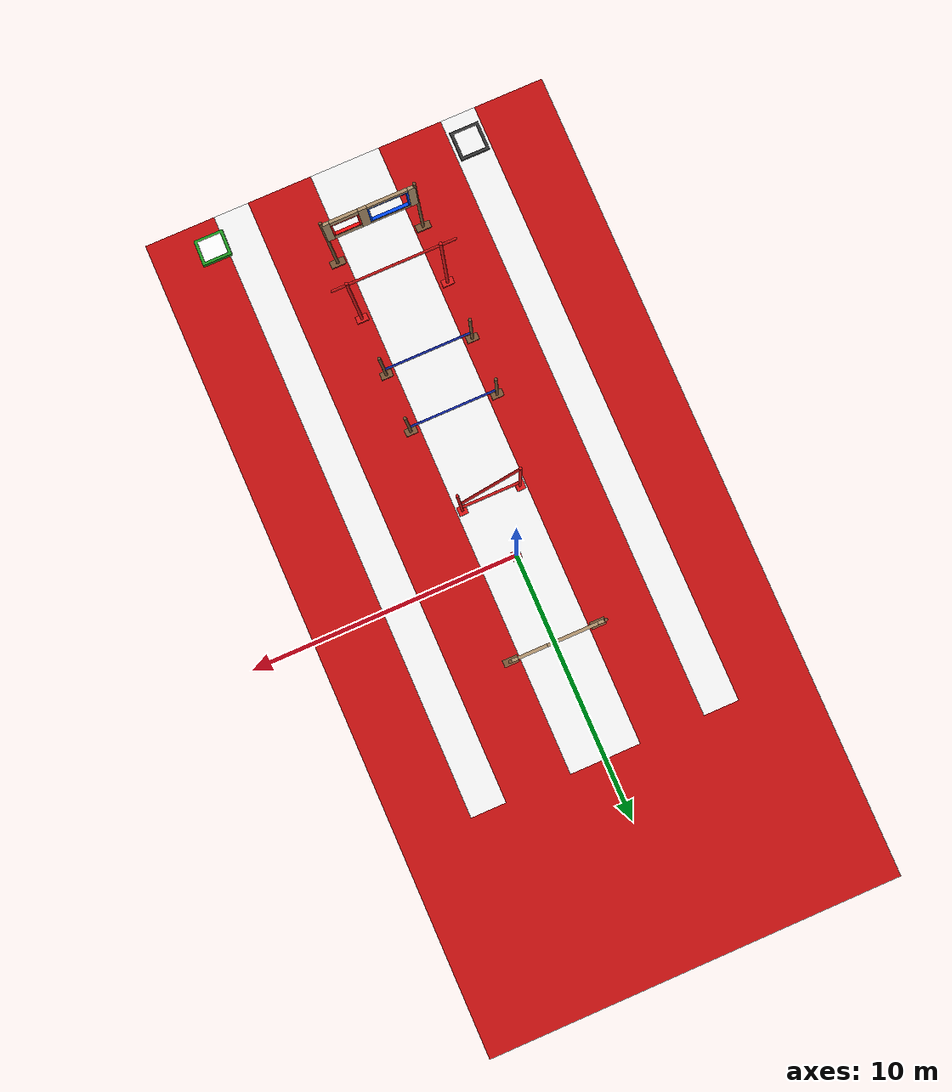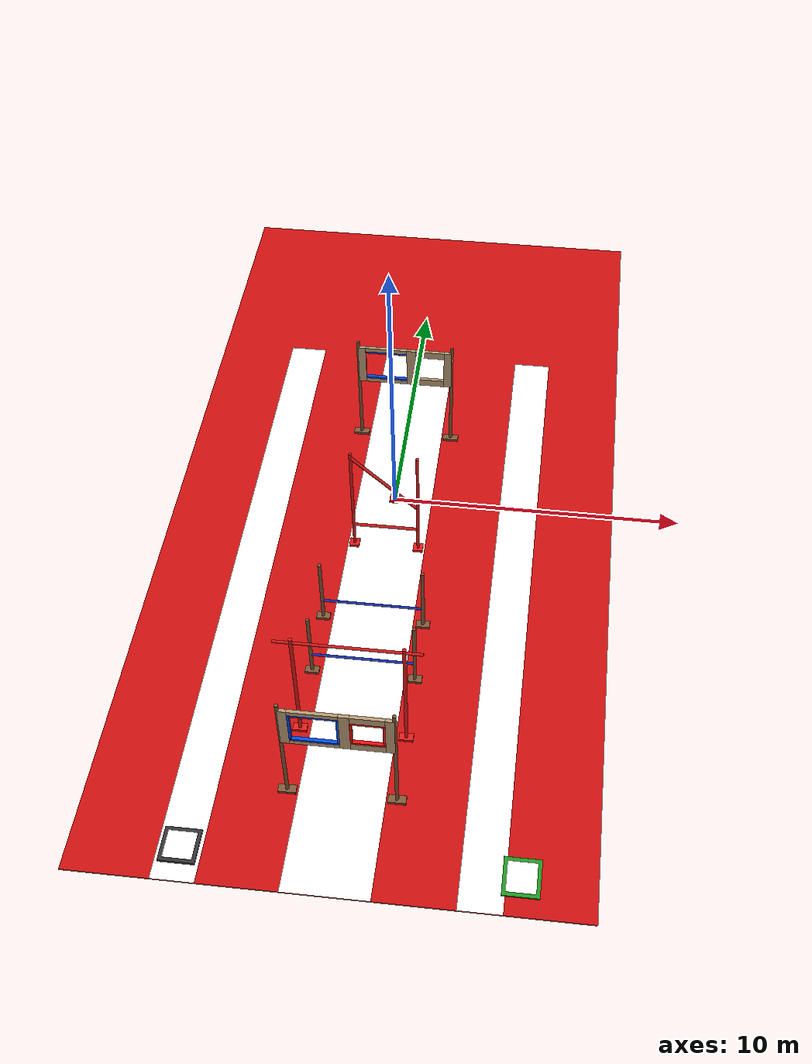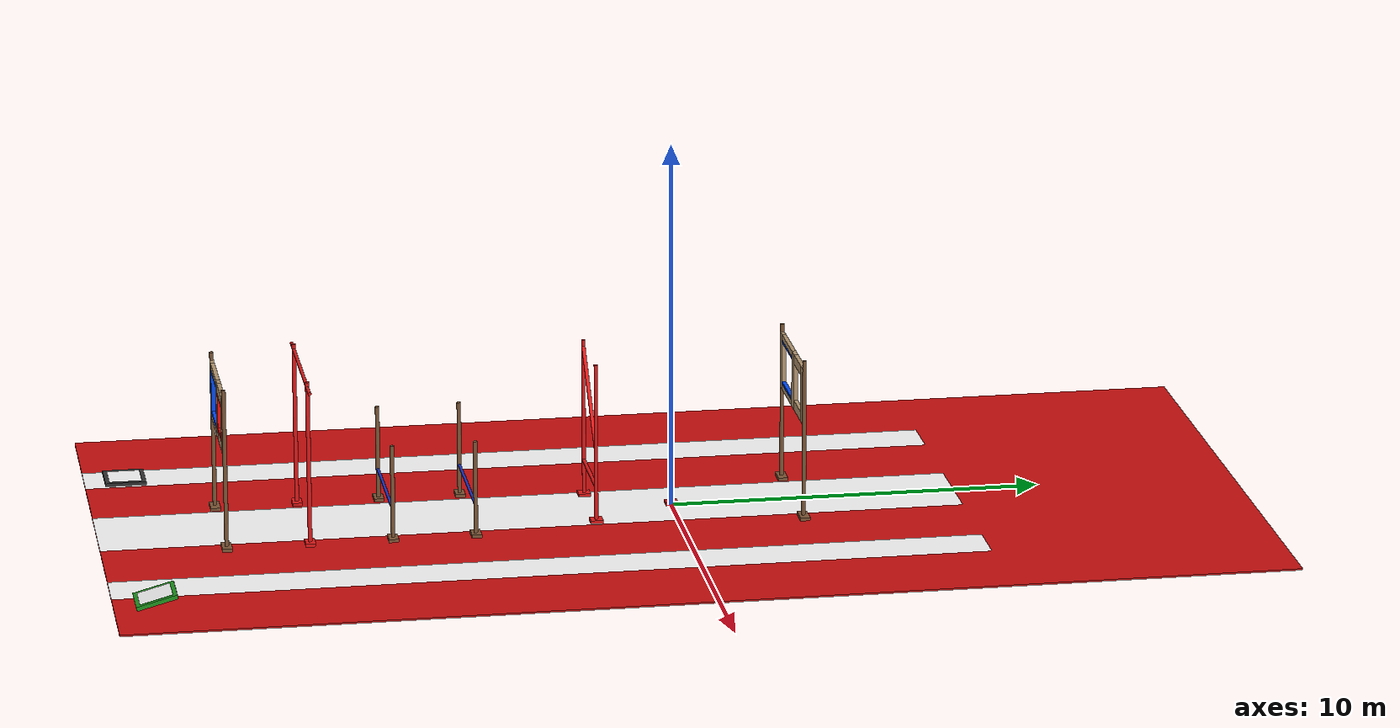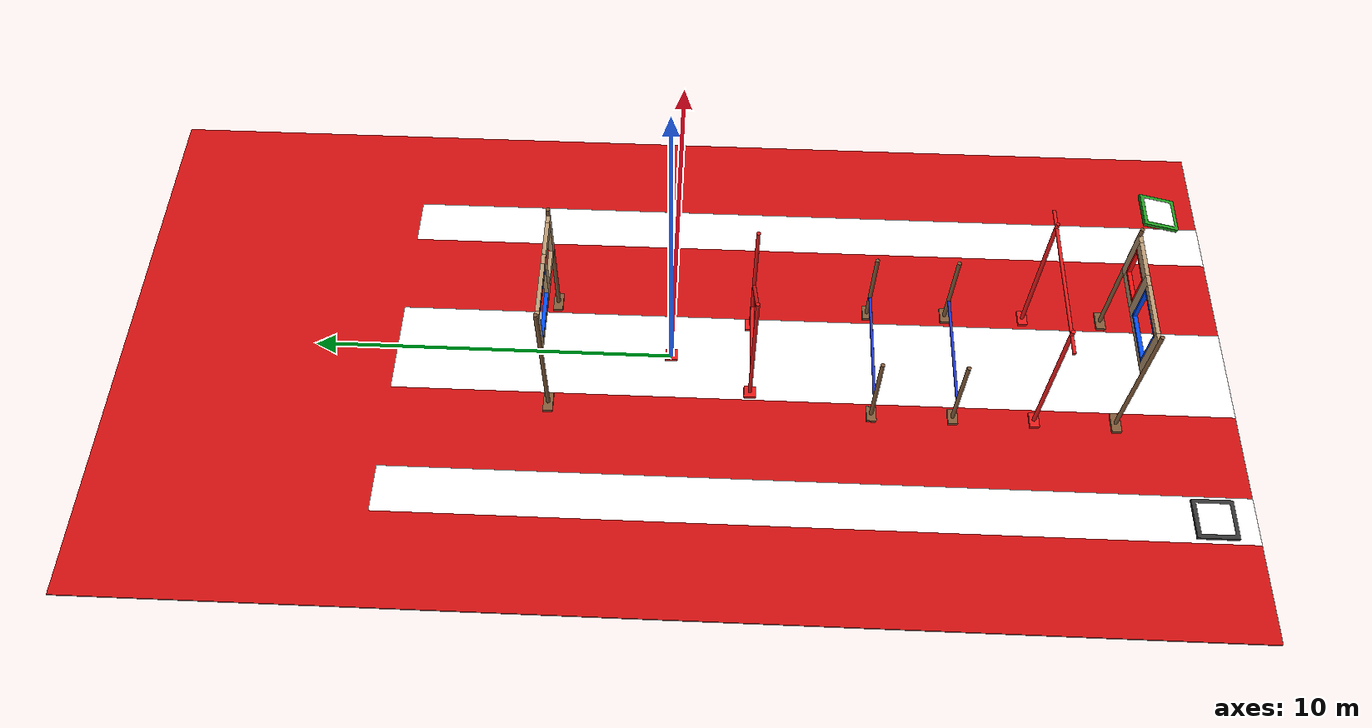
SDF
<sdf version="1.9">
 <world name="imav2026_scaled">
  <model name="arena_floor">
   <static>true</static>
   <link name="link">
    <collision name="col"><geometry><box><size>15.4 30.8 0.044</size></box></geometry></collision>
    <visual name="vis">
     <geometry><box><size>15.4 30.8 0.044</size></box></geometry>
     <material>
      <ambient>0.80 0.06 0.06 1</ambient>
      <diffuse>0.80 0.06 0.06 1</diffuse>
      <pbr><metal><roughness>0.8</roughness><metalness>0.0</metalness></metal></pbr>
     </material>
    </visual>
   </link>
  </model>
  <model name="strip_L">
   <static>true</static>
   <pose>-4.4 -3.85 0.0242 0 0 0</pose>
   <link name="link">
    <collision name="col"><geometry><box><size>1.32 23.1 0.0022</size></box></geometry></collision>
    <visual name="v">
     <geometry>
      <mesh><uri>model://materials/meshes/strip_narrow.obj</uri><scale>2.2 2.2 2.2</scale></mesh>
     </geometry>
     <material>
      <diffuse>1.0 1.0 1.0 1.0</diffuse>
      <pbr>
       <metal>
        <albedo_map>model://materials/textures/flower_wallpaper.jpg</albedo_map>
        <roughness>0.8</roughness>
        <metalness>0.0</metalness>
       </metal>
      </pbr>
     </material>
    </visual>
   </link>
  </model>
  <model name="strip_C">
   <static>true</static>
   <pose>0.0 -3.85 0.0242 0 0 0</pose>
   <link name="link">
    <collision name="col"><geometry><box><size>2.64 23.1 0.0022</size></box></geometry></collision>
    <visual name="v">
     <geometry><mesh><uri>model://materials/meshes/strip_wide.obj</uri><scale>2.2 2.2 2.2</scale></mesh></geometry>
     <material>
      <diffuse>1.0 1.0 1.0 1.0</diffuse>
      <pbr>
       <metal>
        <albedo_map>model://materials/textures/flower_wallpaper.jpg</albedo_map>
        <roughness>0.8</roughness>
        <metalness>0.0</metalness>
       </metal>
      </pbr>
     </material>
    </visual>
   </link>
  </model>
  <model name="strip_R">
   <static>true</static>
   <pose>4.4 -3.85 0.0242 0 0 0</pose>
   <link name="link">
    <collision name="col"><geometry><box><size>1.32 23.1 0.0022</size></box></geometry></collision>
    <visual name="v">
     <geometry>
      <mesh><uri>model://materials/meshes/strip_narrow.obj</uri><scale>2.2 2.2 2.2</scale></mesh>
     </geometry>
     <material>
      <diffuse>1.0 1.0 1.0 1.0</diffuse>
      <pbr>
       <metal>
        <albedo_map>model://materials/textures/flower_wallpaper.jpg</albedo_map>
        <roughness>0.8</roughness>
        <metalness>0.0</metalness>
       </metal>
      </pbr>
     </material>
    </visual>
   </link>
  </model>
  <model name="obs_wall_leg_L">
   <static>true</static>
   <pose>-1.65 3.3 2.2 0 0 0</pose>
   <link name="link">
    <collision name="col">
     <geometry><cylinder><radius>0.055</radius><length>4.4</length></cylinder></geometry>
    </collision>
    <visual name="v">
     <geometry><cylinder><radius>0.055</radius><length>4.4</length></cylinder></geometry>
     <material>
      <ambient>0.50 0.35 0.22 1</ambient>
      <diffuse>0.50 0.35 0.22 1</diffuse>
      <pbr><metal><roughness>0.8</roughness><metalness>0.0</metalness></metal></pbr>
     </material>
    </visual>
   </link>
  </model>
  <model name="obs_wall_foot_L">
   <static>true</static>
   <pose>-1.65 3.3 0.055 0 0 0</pose>
   <link name="link">
    <collision name="col"><geometry><box><size>0.55 0.264 0.11</size></box></geometry></collision>
    <visual name="v">
     <geometry><box><size>0.55 0.264 0.11</size></box></geometry>
     <material>
      <ambient>0.50 0.35 0.22 1</ambient>
      <diffuse>0.50 0.35 0.22 1</diffuse>
      <pbr><metal><roughness>0.8</roughness><metalness>0.0</metalness></metal></pbr>
     </material>
    </visual>
   </link>
  </model>
  <model name="obs_wall_leg_R">
   <static>true</static>
   <pose>1.65 3.3 2.2 0 0 0</pose>
   <link name="link">
    <collision name="col">
     <geometry><cylinder><radius>0.055</radius><length>4.4</length></cylinder></geometry>
    </collision>
    <visual name="v">
     <geometry><cylinder><radius>0.055</radius><length>4.4</length></cylinder></geometry>
     <material>
      <ambient>0.50 0.35 0.22 1</ambient>
      <diffuse>0.50 0.35 0.22 1</diffuse>
      <pbr><metal><roughness>0.8</roughness><metalness>0.0</metalness></metal></pbr>
     </material>
    </visual>
   </link>
  </model>
  <model name="obs_wall_foot_R">
   <static>true</static>
   <pose>1.65 3.3 0.055 0 0 0</pose>
   <link name="link">
    <collision name="col"><geometry><box><size>0.55 0.264 0.11</size></box></geometry></collision>
    <visual name="v">
     <geometry><box><size>0.55 0.264 0.11</size></box></geometry>
     <material>
      <ambient>0.50 0.35 0.22 1</ambient>
      <diffuse>0.50 0.35 0.22 1</diffuse>
      <pbr><metal><roughness>0.8</roughness><metalness>0.0</metalness></metal></pbr>
     </material>
    </visual>
   </link>
  </model>
  <model name="obs_wall_bd_L">
   <static>true</static>
   <pose>-1.518 3.3 3.41 0 0 0</pose>
   <link name="link">
    <collision name="col"><geometry><box><size>0.264 0.11 1.54</size></box></geometry></collision>
    <visual name="v">
     <geometry><box><size>0.264 0.11 1.54</size></box></geometry>
     <material>
      <ambient>0.72 0.60 0.45 1</ambient>
      <diffuse>0.72 0.60 0.45 1</diffuse>
      <pbr><metal><roughness>0.8</roughness><metalness>0.0</metalness></metal></pbr>
     </material>
    </visual>
   </link>
  </model>
  <model name="obs_wall_bd_M">
   <static>true</static>
   <pose>0.22 3.3 3.41 0 0 0</pose>
   <link name="link">
    <collision name="col"><geometry><box><size>0.308 0.11 1.54</size></box></geometry></collision>
    <visual name="v">
     <geometry><box><size>0.308 0.11 1.54</size></box></geometry>
     <material>
      <ambient>0.72 0.60 0.45 1</ambient>
      <diffuse>0.72 0.60 0.45 1</diffuse>
      <pbr><metal><roughness>0.8</roughness><metalness>0.0</metalness></metal></pbr>
     </material>
    </visual>
   </link>
  </model>
  <model name="obs_wall_bd_R">
   <static>true</static>
   <pose>1.518 3.3 3.41 0 0 0</pose>
   <link name="link">
    <collision name="col"><geometry><box><size>0.264 0.11 1.54</size></box></geometry></collision>
    <visual name="v">
     <geometry><box><size>0.264 0.11 1.54</size></box></geometry>
     <material>
      <ambient>0.72 0.60 0.45 1</ambient>
      <diffuse>0.72 0.60 0.45 1</diffuse>
      <pbr><metal><roughness>0.8</roughness><metalness>0.0</metalness></metal></pbr>
     </material>
    </visual>
   </link>
  </model>
  <model name="obs_wall_bd_B_blue">
   <static>true</static>
   <pose>-0.66 3.3 2.717 0 0 0</pose>
   <link name="link">
    <collision name="col"><geometry><box><size>1.452 0.11 0.154</size></box></geometry></collision>
    <visual name="v">
     <geometry><box><size>1.452 0.11 0.154</size></box></geometry>
     <material>
      <ambient>0.72 0.60 0.45 1</ambient>
      <diffuse>0.72 0.60 0.45 1</diffuse>
      <pbr><metal><roughness>0.8</roughness><metalness>0.0</metalness></metal></pbr>
     </material>
    </visual>
   </link>
  </model>
  <model name="obs_wall_bd_T_blue">
   <static>true</static>
   <pose>-0.66 3.3 4.103 0 0 0</pose>
   <link name="link">
    <collision name="col"><geometry><box><size>1.452 0.11 0.154</size></box></geometry></collision>
    <visual name="v">
     <geometry><box><size>1.452 0.11 0.154</size></box></geometry>
     <material>
      <ambient>0.72 0.60 0.45 1</ambient>
      <diffuse>0.72 0.60 0.45 1</diffuse>
      <pbr><metal><roughness>0.8</roughness><metalness>0.0</metalness></metal></pbr>
     </material>
    </visual>
   </link>
  </model>
  <model name="obs_wall_bd_B_red">
   <static>true</static>
   <pose>0.88 3.3 2.772 0 0 0</pose>
   <link name="link">
    <collision name="col"><geometry><box><size>1.012 0.11 0.264</size></box></geometry></collision>
    <visual name="v">
     <geometry><box><size>1.012 0.11 0.264</size></box></geometry>
     <material>
      <ambient>0.72 0.60 0.45 1</ambient>
      <diffuse>0.72 0.60 0.45 1</diffuse>
      <pbr><metal><roughness>0.8</roughness><metalness>0.0</metalness></metal></pbr>
     </material>
    </visual>
   </link>
  </model>
  <model name="obs_wall_bd_T_red">
   <static>true</static>
   <pose>0.88 3.3 4.048 0 0 0</pose>
   <link name="link">
    <collision name="col"><geometry><box><size>1.012 0.11 0.264</size></box></geometry></collision>
    <visual name="v">
     <geometry><box><size>1.012 0.11 0.264</size></box></geometry>
     <material>
      <ambient>0.72 0.60 0.45 1</ambient>
      <diffuse>0.72 0.60 0.45 1</diffuse>
      <pbr><metal><roughness>0.8</roughness><metalness>0.0</metalness></metal></pbr>
     </material>
    </visual>
   </link>
  </model>
  <model name="obs_wall_blue_top">
   <static>true</static>
   <pose>-0.66 3.3 3.993 0 0 0</pose>
   <link name="link">
    <collision name="col"><geometry><box><size>1.452 0.11 0.066</size></box></geometry></collision>
    <visual name="v">
     <geometry><box><size>1.452 0.11 0.066</size></box></geometry>
     <material>
      <ambient>0.0 0.3 1.0 1</ambient>
      <diffuse>0.0 0.3 1.0 1</diffuse>
      <pbr><metal><roughness>0.5</roughness><metalness>0.0</metalness></metal></pbr>
     </material>
    </visual>
   </link>
  </model>
  <model name="obs_wall_blue_bot">
   <static>true</static>
   <pose>-0.66 3.3 2.827 0 0 0</pose>
   <link name="link">
    <collision name="col"><geometry><box><size>1.452 0.11 0.066</size></box></geometry></collision>
    <visual name="v">
     <geometry><box><size>1.452 0.11 0.066</size></box></geometry>
     <material>
      <ambient>0.0 0.3 1.0 1</ambient>
      <diffuse>0.0 0.3 1.0 1</diffuse>
      <pbr><metal><roughness>0.5</roughness><metalness>0.0</metalness></metal></pbr>
     </material>
    </visual>
   </link>
  </model>
  <model name="exit_wall_leg_L">
   <static>true</static>
   <pose>-1.65 -12.1 2.2 0 0 0</pose>
   <link name="link">
    <collision name="col">
     <geometry><cylinder><radius>0.055</radius><length>4.4</length></cylinder></geometry>
    </collision>
    <visual name="v">
     <geometry><cylinder><radius>0.055</radius><length>4.4</length></cylinder></geometry>
     <material>
      <ambient>0.50 0.35 0.22 1</ambient>
      <diffuse>0.50 0.35 0.22 1</diffuse>
      <pbr><metal><roughness>0.8</roughness><metalness>0.0</metalness></metal></pbr>
     </material>
    </visual>
   </link>
  </model>
  <model name="exit_wall_foot_L">
   <static>true</static>
   <pose>-1.65 -12.1 0.055 0 0 0</pose>
   <link name="link">
    <collision name="col"><geometry><box><size>0.55 0.264 0.11</size></box></geometry></collision>
    <visual name="v">
     <geometry><box><size>0.55 0.264 0.11</size></box></geometry>
     <material>
      <ambient>0.50 0.35 0.22 1</ambient>
      <diffuse>0.50 0.35 0.22 1</diffuse>
      <pbr><metal><roughness>0.8</roughness><metalness>0.0</metalness></metal></pbr>
     </material>
    </visual>
   </link>
  </model>
  <model name="exit_wall_leg_R">
   <static>true</static>
   <pose>1.65 -12.1 2.2 0 0 0</pose>
   <link name="link">
    <collision name="col">
     <geometry><cylinder><radius>0.055</radius><length>4.4</length></cylinder></geometry>
    </collision>
    <visual name="v">
     <geometry><cylinder><radius>0.055</radius><length>4.4</length></cylinder></geometry>
     <material>
      <ambient>0.50 0.35 0.22 1</ambient>
      <diffuse>0.50 0.35 0.22 1</diffuse>
      <pbr><metal><roughness>0.8</roughness><metalness>0.0</metalness></metal></pbr>
     </material>
    </visual>
   </link>
  </model>
  <model name="exit_wall_foot_R">
   <static>true</static>
   <pose>1.65 -12.1 0.055 0 0 0</pose>
   <link name="link">
    <collision name="col"><geometry><box><size>0.55 0.264 0.11</size></box></geometry></collision>
    <visual name="v">
     <geometry><box><size>0.55 0.264 0.11</size></box></geometry>
     <material>
      <ambient>0.50 0.35 0.22 1</ambient>
      <diffuse>0.50 0.35 0.22 1</diffuse>
      <pbr><metal><roughness>0.8</roughness><metalness>0.0</metalness></metal></pbr>
     </material>
    </visual>
   </link>
  </model>
  <model name="exit_wall_bd_L">
   <static>true</static>
   <pose>-1.518 -12.1 3.41 0 0 0</pose>
   <link name="link">
    <collision name="col"><geometry><box><size>0.264 0.11 1.54</size></box></geometry></collision>
    <visual name="v">
     <geometry><box><size>0.264 0.11 1.54</size></box></geometry>
     <material>
      <ambient>0.72 0.60 0.45 1</ambient>
      <diffuse>0.72 0.60 0.45 1</diffuse>
      <pbr><metal><roughness>0.8</roughness><metalness>0.0</metalness></metal></pbr>
     </material>
    </visual>
   </link>
  </model>
  <model name="exit_wall_bd_M">
   <static>true</static>
   <pose>0.22 -12.1 3.41 0 0 0</pose>
   <link name="link">
    <collision name="col"><geometry><box><size>0.308 0.11 1.54</size></box></geometry></collision>
    <visual name="v">
     <geometry><box><size>0.308 0.11 1.54</size></box></geometry>
     <material>
      <ambient>0.72 0.60 0.45 1</ambient>
      <diffuse>0.72 0.60 0.45 1</diffuse>
      <pbr><metal><roughness>0.8</roughness><metalness>0.0</metalness></metal></pbr>
     </material>
    </visual>
   </link>
  </model>
  <model name="exit_wall_bd_R">
   <static>true</static>
   <pose>1.518 -12.1 3.41 0 0 0</pose>
   <link name="link">
    <collision name="col"><geometry><box><size>0.264 0.11 1.54</size></box></geometry></collision>
    <visual name="v">
     <geometry><box><size>0.264 0.11 1.54</size></box></geometry>
     <material>
      <ambient>0.72 0.60 0.45 1</ambient>
      <diffuse>0.72 0.60 0.45 1</diffuse>
      <pbr><metal><roughness>0.8</roughness><metalness>0.0</metalness></metal></pbr>
     </material>
    </visual>
   </link>
  </model>
  <model name="exit_wall_bd_B_blue">
   <static>true</static>
   <pose>-0.66 -12.1 2.717 0 0 0</pose>
   <link name="link">
    <collision name="col"><geometry><box><size>1.452 0.11 0.154</size></box></geometry></collision>
    <visual name="v">
     <geometry><box><size>1.452 0.11 0.154</size></box></geometry>
     <material>
      <ambient>0.72 0.60 0.45 1</ambient>
      <diffuse>0.72 0.60 0.45 1</diffuse>
      <pbr><metal><roughness>0.8</roughness><metalness>0.0</metalness></metal></pbr>
     </material>
    </visual>
   </link>
  </model>
  <model name="exit_wall_bd_T_blue">
   <static>true</static>
   <pose>-0.66 -12.1 4.103 0 0 0</pose>
   <link name="link">
    <collision name="col"><geometry><box><size>1.452 0.11 0.154</size></box></geometry></collision>
    <visual name="v">
     <geometry><box><size>1.452 0.11 0.154</size></box></geometry>
     <material>
      <ambient>0.72 0.60 0.45 1</ambient>
      <diffuse>0.72 0.60 0.45 1</diffuse>
      <pbr><metal><roughness>0.8</roughness><metalness>0.0</metalness></metal></pbr>
     </material>
    </visual>
   </link>
  </model>
  <model name="exit_wall_bd_B_red">
   <static>true</static>
   <pose>0.88 -12.1 2.772 0 0 0</pose>
   <link name="link">
    <collision name="col"><geometry><box><size>1.012 0.11 0.264</size></box></geometry></collision>
    <visual name="v">
     <geometry><box><size>1.012 0.11 0.264</size></box></geometry>
     <material>
      <ambient>0.72 0.60 0.45 1</ambient>
      <diffuse>0.72 0.60 0.45 1</diffuse>
      <pbr><metal><roughness>0.8</roughness><metalness>0.0</metalness></metal></pbr>
     </material>
    </visual>
   </link>
  </model>
  <model name="exit_wall_bd_T_red">
   <static>true</static>
   <pose>0.88 -12.1 4.048 0 0 0</pose>
   <link name="link">
    <collision name="col"><geometry><box><size>1.012 0.11 0.264</size></box></geometry></collision>
    <visual name="v">
     <geometry><box><size>1.012 0.11 0.264</size></box></geometry>
     <material>
      <ambient>0.72 0.60 0.45 1</ambient>
      <diffuse>0.72 0.60 0.45 1</diffuse>
      <pbr><metal><roughness>0.8</roughness><metalness>0.0</metalness></metal></pbr>
     </material>
    </visual>
   </link>
  </model>
  <model name="exit_wall_blue_top">
   <static>true</static>
   <pose>-0.66 -12.1 3.993 0 0 0</pose>
   <link name="link">
    <collision name="col"><geometry><box><size>1.452 0.11 0.066</size></box></geometry></collision>
    <visual name="v">
     <geometry><box><size>1.452 0.11 0.066</size></box></geometry>
     <material>
      <ambient>0.0 0.3 1.0 1</ambient>
      <diffuse>0.0 0.3 1.0 1</diffuse>
      <pbr><metal><roughness>0.5</roughness><metalness>0.0</metalness></metal></pbr>
     </material>
    </visual>
   </link>
  </model>
  <model name="exit_wall_blue_bot">
   <static>true</static>
   <pose>-0.66 -12.1 2.827 0 0 0</pose>
   <link name="link">
    <collision name="col"><geometry><box><size>1.452 0.11 0.066</size></box></geometry></collision>
    <visual name="v">
     <geometry><box><size>1.452 0.11 0.066</size></box></geometry>
     <material>
      <ambient>0.0 0.3 1.0 1</ambient>
      <diffuse>0.0 0.3 1.0 1</diffuse>
      <pbr><metal><roughness>0.5</roughness><metalness>0.0</metalness></metal></pbr>
     </material>
    </visual>
   </link>
  </model>
  <model name="exit_wall_blue_L">
   <static>true</static>
   <pose>-1.353 -12.1 3.41 0 0 0</pose>
   <link name="link">
    <collision name="col"><geometry><box><size>0.066 0.11 1.1</size></box></geometry></collision>
    <visual name="v">
     <geometry><box><size>0.066 0.11 1.1</size></box></geometry>
     <material>
      <ambient>0.0 0.3 1.0 1</ambient>
      <diffuse>0.0 0.3 1.0 1</diffuse>
      <pbr><metal><roughness>0.5</roughness><metalness>0.0</metalness></metal></pbr>
     </material>
    </visual>
   </link>
  </model>
  <model name="exit_wall_blue_R">
   <static>true</static>
   <pose>0.033 -12.1 3.41 0 0 0</pose>
   <link name="link">
    <collision name="col"><geometry><box><size>0.066 0.11 1.1</size></box></geometry></collision>
    <visual name="v">
     <geometry><box><size>0.066 0.11 1.1</size></box></geometry>
     <material>
      <ambient>0.0 0.3 1.0 1</ambient>
      <diffuse>0.0 0.3 1.0 1</diffuse>
      <pbr><metal><roughness>0.5</roughness><metalness>0.0</metalness></metal></pbr>
     </material>
    </visual>
   </link>
  </model>
  <model name="exit_wall_red_top">
   <static>true</static>
   <pose>0.88 -12.1 3.883 0 0 0</pose>
   <link name="link">
    <collision name="col"><geometry><box><size>1.012 0.11 0.066</size></box></geometry></collision>
    <visual name="v">
     <geometry><box><size>1.012 0.11 0.066</size></box></geometry>
     <material>
      <ambient>1.0 0.05 0.05 1</ambient>
      <diffuse>1.0 0.05 0.05 1</diffuse>
      <pbr><metal><roughness>0.5</roughness><metalness>0.0</metalness></metal></pbr>
     </material>
    </visual>
   </link>
  </model>
  <model name="exit_wall_red_bot">
   <static>true</static>
   <pose>0.88 -12.1 2.937 0 0 0</pose>
   <link name="link">
    <collision name="col"><geometry><box><size>1.012 0.11 0.066</size></box></geometry></collision>
    <visual name="v">
     <geometry><box><size>1.012 0.11 0.066</size></box></geometry>
     <material>
      <ambient>1.0 0.05 0.05 1</ambient>
      <diffuse>1.0 0.05 0.05 1</diffuse>
      <pbr><metal><roughness>0.5</roughness><metalness>0.0</metalness></metal></pbr>
     </material>
    </visual>
   </link>
  </model>
  <model name="exit_wall_red_L">
   <static>true</static>
   <pose>0.407 -12.1 3.41 0 0 0</pose>
   <link name="link">
    <collision name="col"><geometry><box><size>0.066 0.11 0.88</size></box></geometry></collision>
    <visual name="v">
     <geometry><box><size>0.066 0.11 0.88</size></box></geometry>
     <material>
      <ambient>1.0 0.05 0.05 1</ambient>
      <diffuse>1.0 0.05 0.05 1</diffuse>
      <pbr><metal><roughness>0.5</roughness><metalness>0.0</metalness></metal></pbr>
     </material>
    </visual>
   </link>
  </model>
  <model name="exit_wall_red_R">
   <static>true</static>
   <pose>1.353 -12.1 3.41 0 0 0</pose>
   <link name="link">
    <collision name="col"><geometry><box><size>0.066 0.11 0.88</size></box></geometry></collision>
    <visual name="v">
     <geometry><box><size>0.066 0.11 0.88</size></box></geometry>
     <material>
      <ambient>1.0 0.05 0.05 1</ambient>
      <diffuse>1.0 0.05 0.05 1</diffuse>
      <pbr><metal><roughness>0.5</roughness><metalness>0.0</metalness></metal></pbr>
     </material>
    </visual>
   </link>
  </model>
  <model name="red_post_L">
   <static>true</static>
   <pose>-1.65 -9.9 2.255 0 0 0</pose>
   <link name="link">
    <collision name="col">
     <geometry><cylinder><radius>0.055</radius><length>4.51</length></cylinder></geometry>
    </collision>
    <visual name="v">
     <geometry><cylinder><radius>0.055</radius><length>4.51</length></cylinder></geometry>
     <material>
      <ambient>0.9 0.1 0.1 1</ambient>
      <diffuse>0.9 0.1 0.1 1</diffuse>
      <pbr><metal><roughness>0.5</roughness><metalness>0.0</metalness></metal></pbr>
     </material>
    </visual>
   </link>
  </model>
  <model name="red_post_R">
   <static>true</static>
   <pose>1.65 -9.9 2.255 0 0 0</pose>
   <link name="link">
    <collision name="col">
     <geometry><cylinder><radius>0.055</radius><length>4.51</length></cylinder></geometry>
    </collision>
    <visual name="v">
     <geometry><cylinder><radius>0.055</radius><length>4.51</length></cylinder></geometry>
     <material>
      <ambient>0.9 0.1 0.1 1</ambient>
      <diffuse>0.9 0.1 0.1 1</diffuse>
      <pbr><metal><roughness>0.5</roughness><metalness>0.0</metalness></metal></pbr>
     </material>
    </visual>
   </link>
  </model>
  <model name="red_foot_L">
   <static>true</static>
   <pose>-1.65 -9.9 0.055 0 0 0</pose>
   <link name="link">
    <collision name="col"><geometry><box><size>0.44 0.264 0.11</size></box></geometry></collision>
    <visual name="v">
     <geometry><box><size>0.44 0.264 0.11</size></box></geometry>
     <material>
      <ambient>0.9 0.1 0.1 1</ambient>
      <diffuse>0.9 0.1 0.1 1</diffuse>
      <pbr><metal><roughness>0.5</roughness><metalness>0.0</metalness></metal></pbr>
     </material>
    </visual>
   </link>
  </model>
  <model name="red_foot_R">
   <static>true</static>
   <pose>1.65 -9.9 0.055 0 0 0</pose>
   <link name="link">
    <collision name="col"><geometry><box><size>0.44 0.264 0.11</size></box></geometry></collision>
    <visual name="v">
     <geometry><box><size>0.44 0.264 0.11</size></box></geometry>
     <material>
      <ambient>0.9 0.1 0.1 1</ambient>
      <diffuse>0.9 0.1 0.1 1</diffuse>
      <pbr><metal><roughness>0.5</roughness><metalness>0.0</metalness></metal></pbr>
     </material>
    </visual>
   </link>
  </model>
  <model name="red_bar">
   <static>true</static>
   <pose>0.0 -9.9 4.356 0 1.5708 0</pose>
   <link name="link">
    <collision name="col">
     <geometry><cylinder><radius>0.044</radius><length>4.4</length></cylinder></geometry>
    </collision>
    <visual name="v">
     <geometry><cylinder><radius>0.044</radius><length>4.4</length></cylinder></geometry>
     <material>
      <ambient>0.9 0.1 0.1 1</ambient>
      <diffuse>0.9 0.1 0.1 1</diffuse>
      <pbr><metal><roughness>0.5</roughness><metalness>0.0</metalness></metal></pbr>
     </material>
    </visual>
   </link>
  </model>
  <model name="blue_post_L1">
   <static>true</static>
   <pose>-1.65 -7.7 1.32 0 0 0</pose>
   <link name="link">
    <collision name="col">
     <geometry><cylinder><radius>0.055</radius><length>2.64</length></cylinder></geometry>
    </collision>
    <visual name="v">
     <geometry><cylinder><radius>0.055</radius><length>2.64</length></cylinder></geometry>
     <material>
      <ambient>0.50 0.35 0.22 1</ambient>
      <diffuse>0.50 0.35 0.22 1</diffuse>
      <pbr><metal><roughness>0.8</roughness><metalness>0.0</metalness></metal></pbr>
     </material>
    </visual>
   </link>
  </model>
  <model name="blue_post_R1">
   <static>true</static>
   <pose>1.65 -7.7 1.32 0 0 0</pose>
   <link name="link">
    <collision name="col">
     <geometry><cylinder><radius>0.055</radius><length>2.64</length></cylinder></geometry>
    </collision>
    <visual name="v">
     <geometry><cylinder><radius>0.055</radius><length>2.64</length></cylinder></geometry>
     <material>
      <ambient>0.50 0.35 0.22 1</ambient>
      <diffuse>0.50 0.35 0.22 1</diffuse>
      <pbr><metal><roughness>0.8</roughness><metalness>0.0</metalness></metal></pbr>
     </material>
    </visual>
   </link>
  </model>
  <model name="blue_foot_L1">
   <static>true</static>
   <pose>-1.65 -7.7 0.055 0 0 0</pose>
   <link name="link">
    <collision name="col"><geometry><box><size>0.44 0.264 0.11</size></box></geometry></collision>
    <visual name="v">
     <geometry><box><size>0.44 0.264 0.11</size></box></geometry>
     <material>
      <ambient>0.50 0.35 0.22 1</ambient>
      <diffuse>0.50 0.35 0.22 1</diffuse>
      <pbr><metal><roughness>0.8</roughness><metalness>0.0</metalness></metal></pbr>
     </material>
    </visual>
   </link>
  </model>
  <model name="blue_foot_R1">
   <static>true</static>
   <pose>1.65 -7.7 0.055 0 0 0</pose>
   <link name="link">
    <collision name="col"><geometry><box><size>0.44 0.264 0.11</size></box></geometry></collision>
    <visual name="v">
     <geometry><box><size>0.44 0.264 0.11</size></box></geometry>
     <material>
      <ambient>0.50 0.35 0.22 1</ambient>
      <diffuse>0.50 0.35 0.22 1</diffuse>
      <pbr><metal><roughness>0.8</roughness><metalness>0.0</metalness></metal></pbr>
     </material>
    </visual>
   </link>
  </model>
  <model name="blue_bar1">
   <static>true</static>
   <pose>0.0 -7.7 0.88 0 1.5708 0</pose>
   <link name="link">
    <collision name="col">
     <geometry><cylinder><radius>0.0396</radius><length>3.3</length></cylinder></geometry>
    </collision>
    <visual name="v">
     <geometry><cylinder><radius>0.0396</radius><length>3.3</length></cylinder></geometry>
     <material>
      <ambient>0.1 0.2 0.8 1</ambient>
      <diffuse>0.1 0.2 0.8 1</diffuse>
      <pbr><metal><roughness>0.5</roughness><metalness>0.0</metalness></metal></pbr>
     </material>
    </visual>
   </link>
  </model>
  <model name="blue_post_L2">
   <static>true</static>
   <pose>-1.65 -5.5 1.32 0 0 0</pose>
   <link name="link">
    <collision name="col">
     <geometry><cylinder><radius>0.055</radius><length>2.64</length></cylinder></geometry>
    </collision>
    <visual name="v">
     <geometry><cylinder><radius>0.055</radius><length>2.64</length></cylinder></geometry>
     <material>
      <ambient>0.50 0.35 0.22 1</ambient>
      <diffuse>0.50 0.35 0.22 1</diffuse>
      <pbr><metal><roughness>0.8</roughness><metalness>0.0</metalness></metal></pbr>
     </material>
    </visual>
   </link>
  </model>
  <model name="blue_post_R2">
   <static>true</static>
   <pose>1.65 -5.5 1.32 0 0 0</pose>
   <link name="link">
    <collision name="col">
     <geometry><cylinder><radius>0.055</radius><length>2.64</length></cylinder></geometry>
    </collision>
    <visual name="v">
     <geometry><cylinder><radius>0.055</radius><length>2.64</length></cylinder></geometry>
     <material>
      <ambient>0.50 0.35 0.22 1</ambient>
      <diffuse>0.50 0.35 0.22 1</diffuse>
      <pbr><metal><roughness>0.8</roughness><metalness>0.0</metalness></metal></pbr>
     </material>
    </visual>
   </link>
  </model>
  <model name="blue_foot_L2">
   <static>true</static>
   <pose>-1.65 -5.5 0.055 0 0 0</pose>
   <link name="link">
    <collision name="col"><geometry><box><size>0.44 0.264 0.11</size></box></geometry></collision>
    <visual name="v">
     <geometry><box><size>0.44 0.264 0.11</size></box></geometry>
     <material>
      <ambient>0.50 0.35 0.22 1</ambient>
      <diffuse>0.50 0.35 0.22 1</diffuse>
      <pbr><metal><roughness>0.8</roughness><metalness>0.0</metalness></metal></pbr>
     </material>
    </visual>
   </link>
  </model>
  <model name="blue_foot_R2">
   <static>true</static>
   <pose>1.65 -5.5 0.055 0 0 0</pose>
   <link name="link">
    <collision name="col"><geometry><box><size>0.44 0.264 0.11</size></box></geometry></collision>
    <visual name="v">
     <geometry><box><size>0.44 0.264 0.11</size></box></geometry>
     <material>
      <ambient>0.50 0.35 0.22 1</ambient>
      <diffuse>0.50 0.35 0.22 1</diffuse>
      <pbr><metal><roughness>0.8</roughness><metalness>0.0</metalness></metal></pbr>
     </material>
    </visual>
   </link>
  </model>
  <model name="blue_bar2">
   <static>true</static>
   <pose>0.0 -5.5 0.88 0 1.5708 0</pose>
   <link name="link">
    <collision name="col">
     <geometry><cylinder><radius>0.0396</radius><length>3.3</length></cylinder></geometry>
    </collision>
    <visual name="v">
     <geometry><cylinder><radius>0.0396</radius><length>3.3</length></cylinder></geometry>
     <material>
      <ambient>0.1 0.2 0.8 1</ambient>
      <diffuse>0.1 0.2 0.8 1</diffuse>
      <pbr><metal><roughness>0.5</roughness><metalness>0.0</metalness></metal></pbr>
     </material>
    </visual>
   </link>
  </model>
  <model name="tube_A_post">
   <static>true</static>
   <pose>0.0 0.0 2.2 0 0 0</pose>
   <link name="link">
    <collision name="col">
     <geometry><cylinder><radius>0.0495</radius><length>4.4</length></cylinder></geometry>
    </collision>
    <visual name="v">
     <geometry><cylinder><radius>0.0495</radius><length>4.4</length></cylinder></geometry>
     <material>
      <ambient>0.9 0.1 0.1 1</ambient>
      <diffuse>0.9 0.1 0.1 1</diffuse>
      <pbr><metal><roughness>0.5</roughness><metalness>0.0</metalness></metal></pbr>
     </material>
    </visual>
   </link>
  </model>
  <model name="tube_A_foot">
   <static>true</static>
   <pose>0.0 0.0 0.055 0 0 0</pose>
   <link name="link">
    <collision name="col"><geometry><box><size>0.33 0.33 0.11</size></box></geometry></collision>
    <visual name="v">
     <geometry><box><size>0.33 0.33 0.11</size></box></geometry>
     <material>
      <ambient>0.9 0.1 0.1 1</ambient>
      <diffuse>0.9 0.1 0.1 1</diffuse>
      <pbr><metal><roughness>0.5</roughness><metalness>0.0</metalness></metal></pbr>
     </material>
    </visual>
   </link>
  </model>
  <model name="tube_B_post_L">
   <static>true</static>
   <pose>-1.1 -2.2 2.2 0 0 0</pose>
   <link name="link">
    <collision name="col">
     <geometry><cylinder><radius>0.0495</radius><length>4.4</length></cylinder></geometry>
    </collision>
    <visual name="v">
     <geometry><cylinder><radius>0.0495</radius><length>4.4</length></cylinder></geometry>
     <material>
      <ambient>0.9 0.1 0.1 1</ambient>
      <diffuse>0.9 0.1 0.1 1</diffuse>
      <pbr><metal><roughness>0.5</roughness><metalness>0.0</metalness></metal></pbr>
     </material>
    </visual>
   </link>
  </model>
  <model name="tube_B_post_R">
   <static>true</static>
   <pose>1.1 -2.2 2.2 0 0 0</pose>
   <link name="link">
    <collision name="col">
     <geometry><cylinder><radius>0.0495</radius><length>4.4</length></cylinder></geometry>
    </collision>
    <visual name="v">
     <geometry><cylinder><radius>0.0495</radius><length>4.4</length></cylinder></geometry>
     <material>
      <ambient>0.9 0.1 0.1 1</ambient>
      <diffuse>0.9 0.1 0.1 1</diffuse>
      <pbr><metal><roughness>0.5</roughness><metalness>0.0</metalness></metal></pbr>
     </material>
    </visual>
   </link>
  </model>
  <model name="tube_B_horiz_lo">
   <static>true</static>
   <pose>0.0 -2.2 1.0142 0 1.5708 0</pose>
   <link name="link">
    <collision name="col">
     <geometry><cylinder><radius>0.0495</radius><length>2.2</length></cylinder></geometry>
    </collision>
    <visual name="v">
     <geometry><cylinder><radius>0.0495</radius><length>2.2</length></cylinder></geometry>
     <material>
      <ambient>0.9 0.1 0.1 1</ambient>
      <diffuse>0.9 0.1 0.1 1</diffuse>
      <pbr><metal><roughness>0.5</roughness><metalness>0.0</metalness></metal></pbr>
     </material>
    </visual>
   </link>
  </model>
  <model name="tube_B_diag">
   <static>true</static>
   <pose>0.0 -2.2 3.1284 0 -0.7854 0</pose>
   <link name="link">
    <collision name="col">
     <geometry><cylinder><radius>0.0495</radius><length>3.1108</length></cylinder></geometry>
    </collision>
    <visual name="v">
     <geometry><cylinder><radius>0.0495</radius><length>3.1108</length></cylinder></geometry>
     <material>
      <ambient>0.9 0.1 0.1 1</ambient>
      <diffuse>0.9 0.1 0.1 1</diffuse>
      <pbr><metal><roughness>0.5</roughness><metalness>0.0</metalness></metal></pbr>
     </material>
    </visual>
   </link>
  </model>
  <model name="tube_B_foot_L">
   <static>true</static>
   <pose>-1.1 -2.2 0.055 0 0 0</pose>
   <link name="link">
    <collision name="col"><geometry><box><size>0.33 0.33 0.11</size></box></geometry></collision>
    <visual name="v">
     <geometry><box><size>0.33 0.33 0.11</size></box></geometry>
     <material>
      <ambient>0.9 0.1 0.1 1</ambient>
      <diffuse>0.9 0.1 0.1 1</diffuse>
      <pbr><metal><roughness>0.5</roughness><metalness>0.0</metalness></metal></pbr>
     </material>
    </visual>
   </link>
  </model>
  <model name="tube_B_foot_R">
   <static>true</static>
   <pose>1.1 -2.2 0.055 0 0 0</pose>
   <link name="link">
    <collision name="col"><geometry><box><size>0.33 0.33 0.11</size></box></geometry></collision>
    <visual name="v">
     <geometry><box><size>0.33 0.33 0.11</size></box></geometry>
     <material>
      <ambient>0.9 0.1 0.1 1</ambient>
      <diffuse>0.9 0.1 0.1 1</diffuse>
      <pbr><metal><roughness>0.5</roughness><metalness>0.0</metalness></metal></pbr>
     </material>
    </visual>
   </link>
  </model>
  <model name="takeoff_platform">
   <static>true</static>
   <pose>-4.4 -14.3 0.055 0 0 0</pose>
   <link name="link">
    <collision name="col"><geometry><box><size>1.1 1.1 0.11</size></box></geometry></collision>
    <visual name="v_base">
     <geometry><box><size>1.1 1.1 0.11</size></box></geometry>
     <material><ambient>0.20 0.20 0.20 1</ambient><diffuse>0.20 0.20 0.20 1</diffuse></material>
    </visual>
    <collision name="aruco_id0_col">
     <pose>0.0 0.0 0.0572 0 0 1.5708</pose>
     <geometry><box><size>0.88 0.88 0.0022</size></box></geometry>
    </collision>
    <visual name="aruco_id0">
     <pose>0.0 0.0 0.0572 0 0 1.5708</pose>
     <geometry><box><size>0.88 0.88 0.0022</size></box></geometry>
     <material>
      <diffuse>1.0 1.0 1.0 1.0</diffuse>
      <pbr>
       <metal>
        <albedo_map>model://materials/textures/aruco_marker_0.jpg</albedo_map>
        <roughness>0.5</roughness>
        <metalness>0.0</metalness>
       </metal>
      </pbr>
     </material>
    </visual>
   </link>
  </model>
  <model name="landing_platform">
   <static>false</static>
   <link name="carriage">
    <pose>5.5 -14.3 0.22 0 0 0</pose>
    <inertial><mass>4.0</mass><inertia><ixx>0.1</ixx><iyy>0.1</iyy><izz>0.1</izz></inertia></inertial>
   </link>
   <joint name="stroke_joint" type="prismatic">
    <parent>world</parent>
    <child>carriage</child>
    <axis>
     <xyz>0 1 0</xyz>
     <limit><lower>-0.22</lower><upper>2.42</upper></limit>
     <dynamics>
      <spring_reference>0.5</spring_reference>
      <spring_stiffness>12.5</spring_stiffness>
      <damping>0.0</damping>
      <friction>0.0</friction>
     </dynamics>
    </axis>
   </joint>
   <link name="base_link">
    <pose>5.5 -14.3 0.22 0.2618 0 0</pose>
    <inertial>
     <mass>1.0</mass>
     <inertia><ixx>0.1</ixx><iyy>0.1</iyy><izz>0.1</izz><ixy>0</ixy><ixz>0</ixz><iyz>0</iyz></inertia>
    </inertial>
    <collision name="col"><geometry><box><size>1.1 1.1 0.11</size></box></geometry></collision>
    <visual name="vis_base">
     <geometry><box><size>1.1 1.1 0.11</size></box></geometry>
     <material><ambient>0.12 0.60 0.12 1</ambient><diffuse>0.12 0.60 0.12 1</diffuse></material>
    </visual>
    <collision name="aruco_id1_col">
     <pose>0.0 0.0 0.0572 0 0 -1.5708</pose>
     <geometry><box><size>0.88 0.88 0.0022</size></box></geometry>
    </collision>
    <visual name="aruco_id1">
     <pose>0.0 0.0 0.0572 0 0 -1.5708</pose>
     <geometry><box><size>0.88 0.88 0.0022</size></box></geometry>
     <material>
      <diffuse>1.0 1.0 1.0 1.0</diffuse>
      <pbr>
       <metal>
        <albedo_map>model://materials/textures/aruco_marker_1.jpg</albedo_map>
        <roughness>0.5</roughness>
        <metalness>0.0</metalness>
       </metal>
      </pbr>
     </material>
    </visual>
   </link>
   <joint name="pitch_joint" type="revolute">
    <parent>carriage</parent>
    <child>base_link</child>
    <axis>
     <xyz>1 0 0</xyz>
     <limit><lower>-1.151</lower><upper>0.0</upper></limit>
     <dynamics>
      <spring_reference>-0.2618</spring_reference>
      <spring_stiffness>0.125</spring_stiffness>
      <damping>0.0</damping>
      <friction>0.0</friction>
     </dynamics>
    </axis>
   </joint>
  </model>
 </world>
</sdf>
